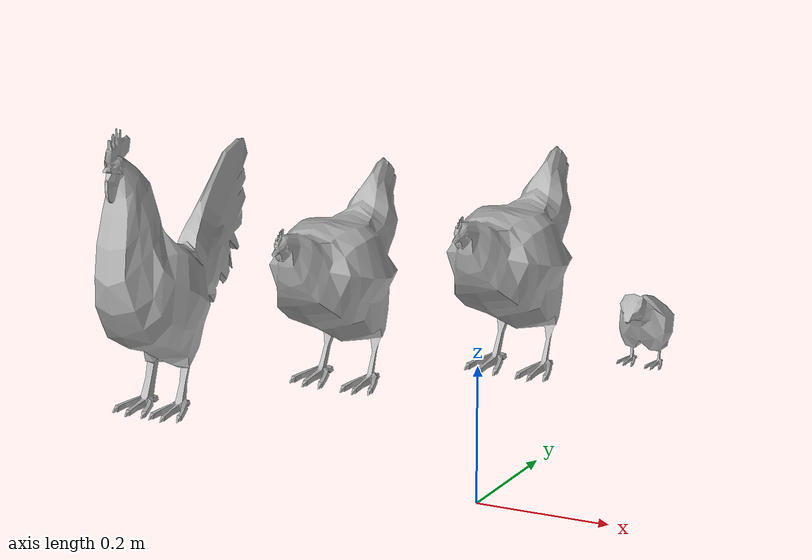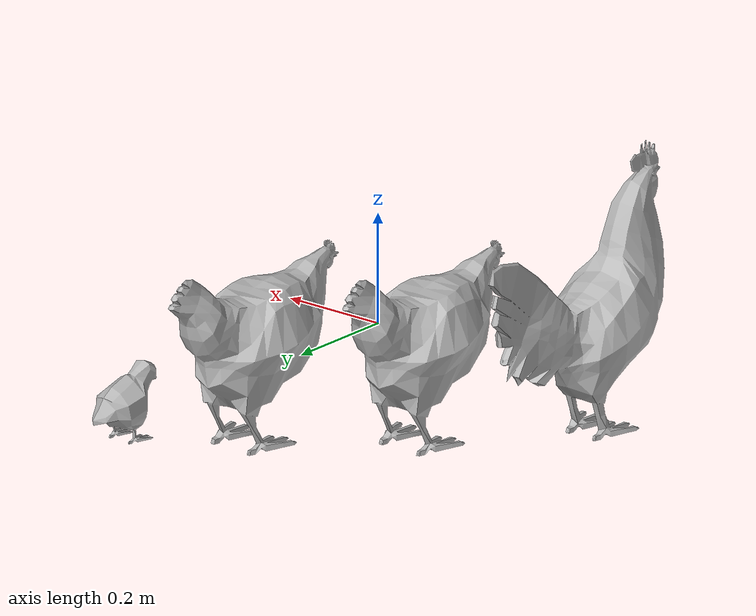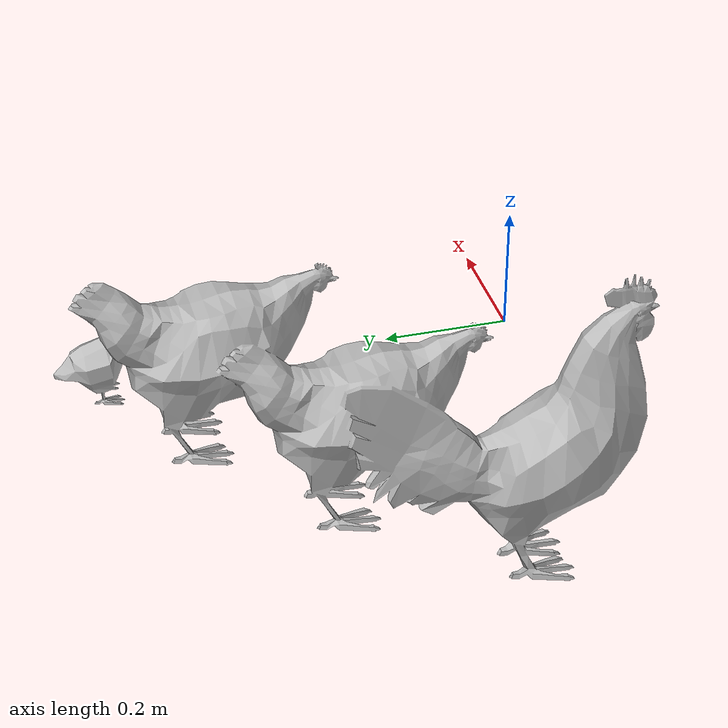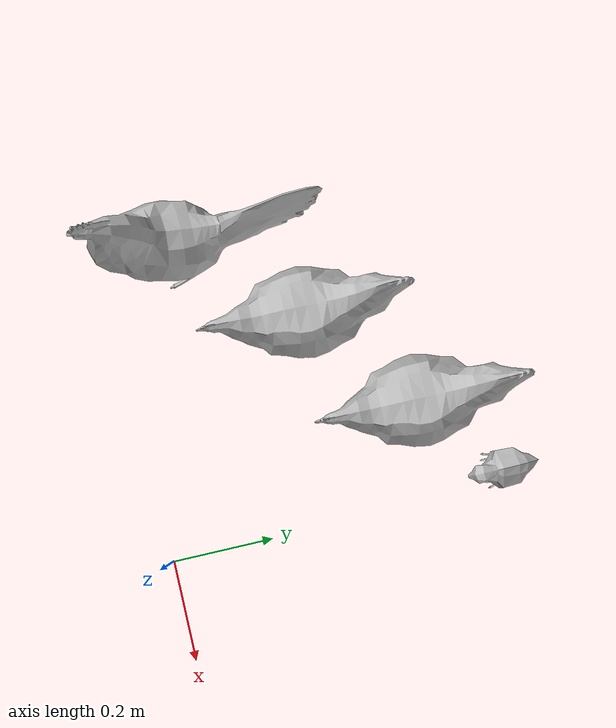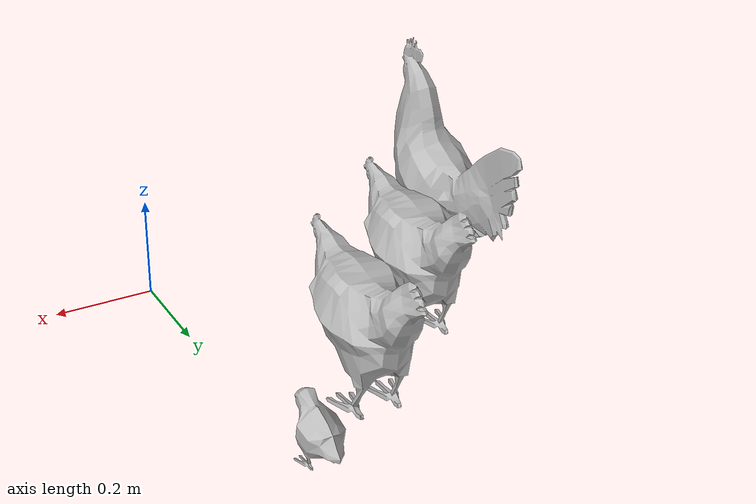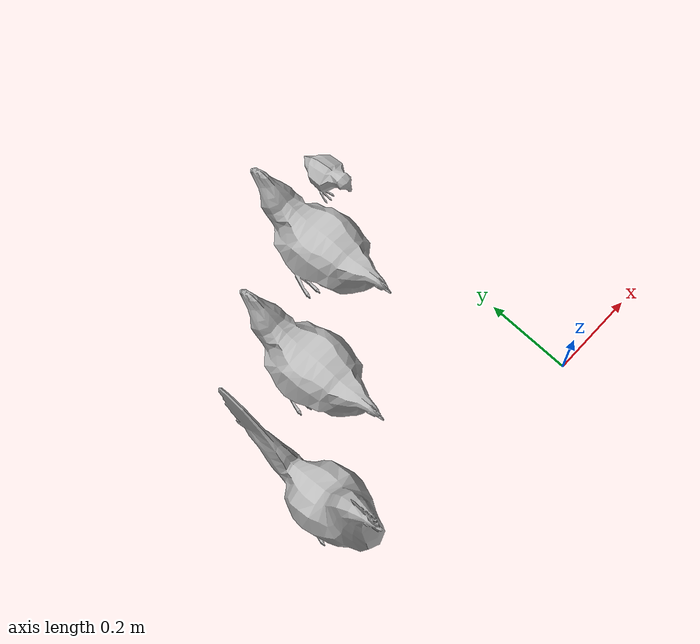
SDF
<?xml version="1.0" ?>
<sdf version="1.5">
  <model name="chickens">
    <static>true</static>
    <link name="link">

      <collision name="collision">
        <geometry>
          <mesh>
            <uri>model://chickens/meshes/chickens.STL</uri>
            <scale>0.03 0.03 0.03</scale>
          </mesh>
        </geometry>
        <surface>
          <friction>
            <ode>
              <mu>10000</mu>
              <mu2>10000</mu2>
            </ode>
          </friction>
        </surface>
      </collision>

      <visual name="visual">
        <geometry>
          <mesh>
            <uri>model://chickens/meshes/chickens.STL</uri>
            <scale>0.03 0.03 0.03</scale>
          </mesh>
        </geometry>
      </visual>
    </link>
  </model>
</sdf>
